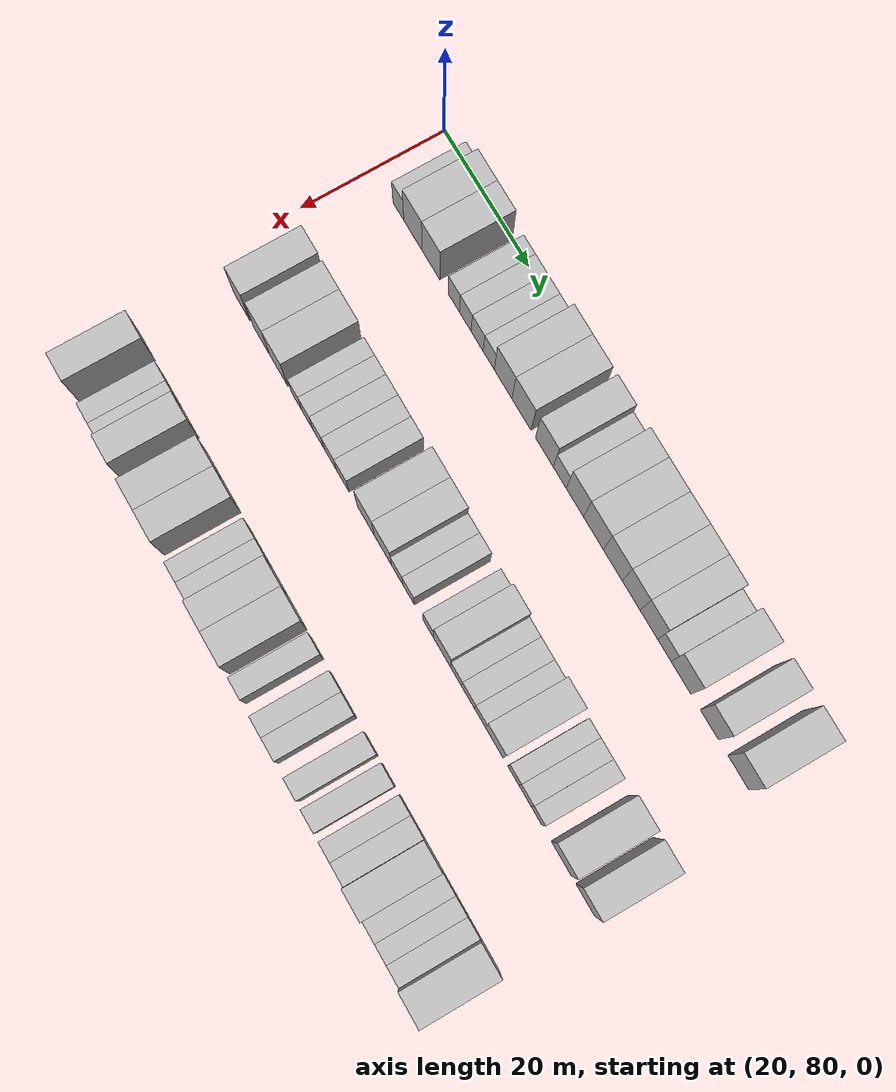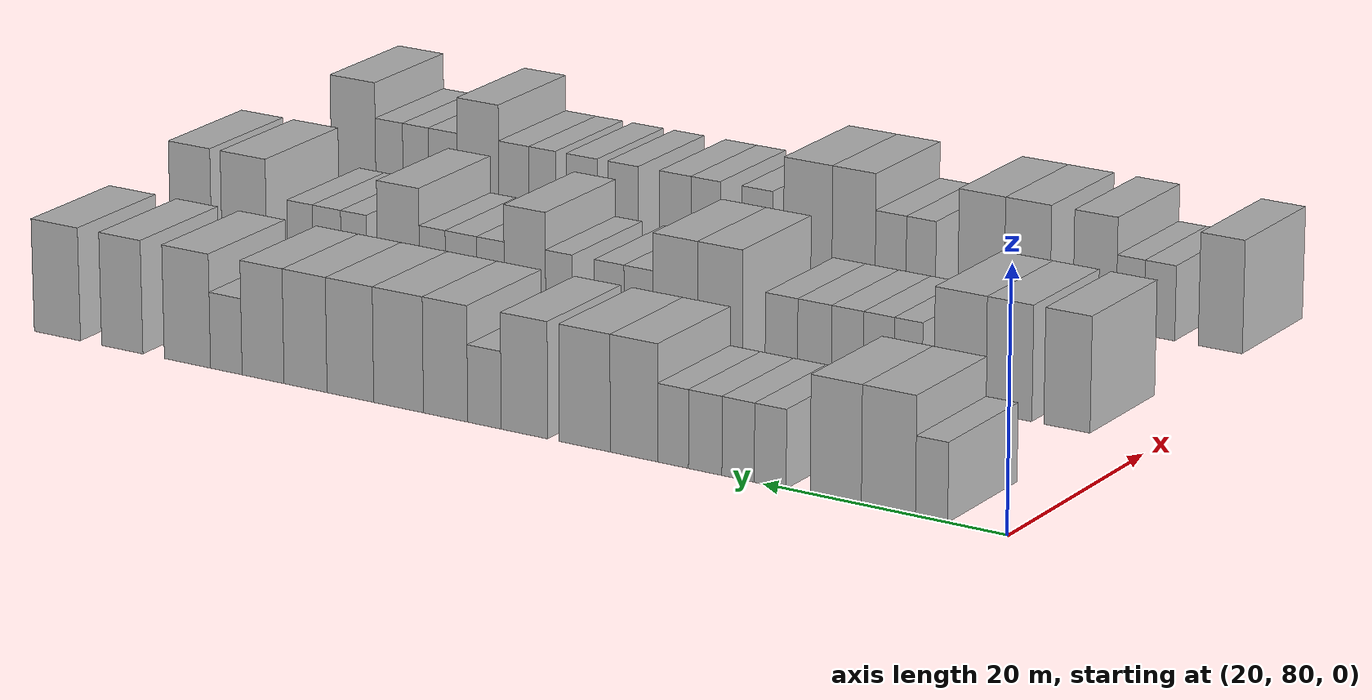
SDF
<sdf version="1.6">
 <world name="default">
  <model name="building_87">
   <static>1</static>
   <pose>25.0000 86.1654 0 0.000000 0.000000 0.000000</pose>
   <link name="link">
    <pose>0 0 3.00 0 0 0</pose>
    <collision name="collision"><geometry><box><size>10.0000 2.6192 6.0000</size></box></geometry></collision>
    <visual name="visual">
     <cast_shadows>0</cast_shadows>
     <geometry><box><size>10.0000 2.6192 6.0000</size></box></geometry>
     <material>
      <script>
       <uri>model://HANNAS_wall/materials/scripts</uri>
       <uri>model://HANNAS_wall/materials/textures</uri>
       <name>vrc/HANNAS_wall</name>
      </script>
     </material>
    </visual>
   </link>
  </model>
  <model name="building_88">
   <static>1</static>
   <pose>25.0000 89.6843 0 0.000000 0.000000 0.000000</pose>
   <link name="link">
    <pose>0 0 4.50 0 0 0</pose>
    <collision name="collision"><geometry><box><size>10.0000 4.4186 9.0000</size></box></geometry></collision>
    <visual name="visual">
     <cast_shadows>0</cast_shadows>
     <geometry><box><size>10.0000 4.4186 9.0000</size></box></geometry>
     <material>
      <script>
       <uri>model://HANNAS_wall/materials/scripts</uri>
       <uri>model://HANNAS_wall/materials/textures</uri>
       <name>vrc/HANNAS_wall</name>
      </script>
     </material>
    </visual>
   </link>
  </model>
  <model name="building_89">
   <static>1</static>
   <pose>25.0000 94.0015 0 0.000000 0.000000 0.000000</pose>
   <link name="link">
    <pose>0 0 4.50 0 0 0</pose>
    <collision name="collision"><geometry><box><size>10.0000 4.2158 9.0000</size></box></geometry></collision>
    <visual name="visual">
     <cast_shadows>0</cast_shadows>
     <geometry><box><size>10.0000 4.2158 9.0000</size></box></geometry>
     <material>
      <script>
       <uri>model://HANNAS_wall/materials/scripts</uri>
       <uri>model://HANNAS_wall/materials/textures</uri>
       <name>vrc/HANNAS_wall</name>
      </script>
     </material>
    </visual>
   </link>
  </model>
  <model name="building_90">
   <static>1</static>
   <pose>25.0000 99.4380 0 0.000000 0.000000 0.000000</pose>
   <link name="link">
    <pose>0 0 3.00 0 0 0</pose>
    <collision name="collision"><geometry><box><size>10.0000 2.6572 6.0000</size></box></geometry></collision>
    <visual name="visual">
     <cast_shadows>0</cast_shadows>
     <geometry><box><size>10.0000 2.6572 6.0000</size></box></geometry>
     <material>
      <script>
       <uri>model://HANNAS_wall/materials/scripts</uri>
       <uri>model://HANNAS_wall/materials/textures</uri>
       <name>vrc/HANNAS_wall</name>
      </script>
     </material>
    </visual>
   </link>
  </model>
  <model name="building_91">
   <static>1</static>
   <pose>25.0000 102.1294 0 0.000000 0.000000 0.000000</pose>
   <link name="link">
    <pose>0 0 3.00 0 0 0</pose>
    <collision name="collision"><geometry><box><size>10.0000 2.7257 6.0000</size></box></geometry></collision>
    <visual name="visual">
     <cast_shadows>0</cast_shadows>
     <geometry><box><size>10.0000 2.7257 6.0000</size></box></geometry>
     <material>
      <script>
       <uri>model://HANNAS_wall/materials/scripts</uri>
       <uri>model://HANNAS_wall/materials/textures</uri>
       <name>vrc/HANNAS_wall</name>
      </script>
     </material>
    </visual>
   </link>
  </model>
  <model name="building_92">
   <static>1</static>
   <pose>25.0000 104.9050 0 0.000000 0.000000 0.000000</pose>
   <link name="link">
    <pose>0 0 3.00 0 0 0</pose>
    <collision name="collision"><geometry><box><size>10.0000 2.8254 6.0000</size></box></geometry></collision>
    <visual name="visual">
     <cast_shadows>0</cast_shadows>
     <geometry><box><size>10.0000 2.8254 6.0000</size></box></geometry>
     <material>
      <script>
       <uri>model://HANNAS_wall/materials/scripts</uri>
       <uri>model://HANNAS_wall/materials/textures</uri>
       <name>vrc/HANNAS_wall</name>
      </script>
     </material>
    </visual>
   </link>
  </model>
  <model name="building_93">
   <static>1</static>
   <pose>25.0000 107.6232 0 0.000000 0.000000 0.000000</pose>
   <link name="link">
    <pose>0 0 3.00 0 0 0</pose>
    <collision name="collision"><geometry><box><size>10.0000 2.6109 6.0000</size></box></geometry></collision>
    <visual name="visual">
     <cast_shadows>0</cast_shadows>
     <geometry><box><size>10.0000 2.6109 6.0000</size></box></geometry>
     <material>
      <script>
       <uri>model://HANNAS_wall/materials/scripts</uri>
       <uri>model://HANNAS_wall/materials/textures</uri>
       <name>vrc/HANNAS_wall</name>
      </script>
     </material>
    </visual>
   </link>
  </model>
  <model name="building_94">
   <static>1</static>
   <pose>25.0000 110.9564 0 0.000000 0.000000 0.000000</pose>
   <link name="link">
    <pose>0 0 4.50 0 0 0</pose>
    <collision name="collision"><geometry><box><size>10.0000 4.0555 9.0000</size></box></geometry></collision>
    <visual name="visual">
     <cast_shadows>0</cast_shadows>
     <geometry><box><size>10.0000 4.0555 9.0000</size></box></geometry>
     <material>
      <script>
       <uri>model://HANNAS_wall/materials/scripts</uri>
       <uri>model://HANNAS_wall/materials/textures</uri>
       <name>vrc/HANNAS_wall</name>
      </script>
     </material>
    </visual>
   </link>
  </model>
  <model name="building_95">
   <static>1</static>
   <pose>25.0000 115.1822 0 0.000000 0.000000 0.000000</pose>
   <link name="link">
    <pose>0 0 4.50 0 0 0</pose>
    <collision name="collision"><geometry><box><size>10.0000 4.3962 9.0000</size></box></geometry></collision>
    <visual name="visual">
     <cast_shadows>0</cast_shadows>
     <geometry><box><size>10.0000 4.3962 9.0000</size></box></geometry>
     <material>
      <script>
       <uri>model://HANNAS_wall/materials/scripts</uri>
       <uri>model://HANNAS_wall/materials/textures</uri>
       <name>vrc/HANNAS_wall</name>
      </script>
     </material>
    </visual>
   </link>
  </model>
  <model name="building_96">
   <static>1</static>
   <pose>25.0000 120.4069 0 0.000000 0.000000 0.000000</pose>
   <link name="link">
    <pose>0 0 4.50 0 0 0</pose>
    <collision name="collision"><geometry><box><size>10.0000 4.0532 9.0000</size></box></geometry></collision>
    <visual name="visual">
     <cast_shadows>0</cast_shadows>
     <geometry><box><size>10.0000 4.0532 9.0000</size></box></geometry>
     <material>
      <script>
       <uri>model://HANNAS_wall/materials/scripts</uri>
       <uri>model://HANNAS_wall/materials/textures</uri>
       <name>vrc/HANNAS_wall</name>
      </script>
     </material>
    </visual>
   </link>
  </model>
  <model name="building_97">
   <static>1</static>
   <pose>25.0000 123.9028 0 0.000000 0.000000 0.000000</pose>
   <link name="link">
    <pose>0 0 3.00 0 0 0</pose>
    <collision name="collision"><geometry><box><size>10.0000 2.9387 6.0000</size></box></geometry></collision>
    <visual name="visual">
     <cast_shadows>0</cast_shadows>
     <geometry><box><size>10.0000 2.9387 6.0000</size></box></geometry>
     <material>
      <script>
       <uri>model://HANNAS_wall/materials/scripts</uri>
       <uri>model://HANNAS_wall/materials/textures</uri>
       <name>vrc/HANNAS_wall</name>
      </script>
     </material>
    </visual>
   </link>
  </model>
  <model name="building_98">
   <static>1</static>
   <pose>25.0000 127.3267 0 0.000000 0.000000 0.000000</pose>
   <link name="link">
    <pose>0 0 4.50 0 0 0</pose>
    <collision name="collision"><geometry><box><size>10.0000 3.9090 9.0000</size></box></geometry></collision>
    <visual name="visual">
     <cast_shadows>0</cast_shadows>
     <geometry><box><size>10.0000 3.9090 9.0000</size></box></geometry>
     <material>
      <script>
       <uri>model://HANNAS_wall/materials/scripts</uri>
       <uri>model://HANNAS_wall/materials/textures</uri>
       <name>vrc/HANNAS_wall</name>
      </script>
     </material>
    </visual>
   </link>
  </model>
  <model name="building_99">
   <static>1</static>
   <pose>25.0000 131.4982 0 0.000000 0.000000 0.000000</pose>
   <link name="link">
    <pose>0 0 4.50 0 0 0</pose>
    <collision name="collision"><geometry><box><size>10.0000 4.4340 9.0000</size></box></geometry></collision>
    <visual name="visual">
     <cast_shadows>0</cast_shadows>
     <geometry><box><size>10.0000 4.4340 9.0000</size></box></geometry>
     <material>
      <script>
       <uri>model://HANNAS_wall/materials/scripts</uri>
       <uri>model://HANNAS_wall/materials/textures</uri>
       <name>vrc/HANNAS_wall</name>
      </script>
     </material>
    </visual>
   </link>
  </model>
  <model name="building_100">
   <static>1</static>
   <pose>25.0000 135.8136 0 0.000000 0.000000 0.000000</pose>
   <link name="link">
    <pose>0 0 4.50 0 0 0</pose>
    <collision name="collision"><geometry><box><size>10.0000 4.1969 9.0000</size></box></geometry></collision>
    <visual name="visual">
     <cast_shadows>0</cast_shadows>
     <geometry><box><size>10.0000 4.1969 9.0000</size></box></geometry>
     <material>
      <script>
       <uri>model://HANNAS_wall/materials/scripts</uri>
       <uri>model://HANNAS_wall/materials/textures</uri>
       <name>vrc/HANNAS_wall</name>
      </script>
     </material>
    </visual>
   </link>
  </model>
  <model name="building_101">
   <static>1</static>
   <pose>25.0000 139.8606 0 0.000000 0.000000 0.000000</pose>
   <link name="link">
    <pose>0 0 4.50 0 0 0</pose>
    <collision name="collision"><geometry><box><size>10.0000 3.8971 9.0000</size></box></geometry></collision>
    <visual name="visual">
     <cast_shadows>0</cast_shadows>
     <geometry><box><size>10.0000 3.8971 9.0000</size></box></geometry>
     <material>
      <script>
       <uri>model://HANNAS_wall/materials/scripts</uri>
       <uri>model://HANNAS_wall/materials/textures</uri>
       <name>vrc/HANNAS_wall</name>
      </script>
     </material>
    </visual>
   </link>
  </model>
  <model name="building_102">
   <static>1</static>
   <pose>25.0000 143.7255 0 0.000000 0.000000 0.000000</pose>
   <link name="link">
    <pose>0 0 4.50 0 0 0</pose>
    <collision name="collision"><geometry><box><size>10.0000 3.8327 9.0000</size></box></geometry></collision>
    <visual name="visual">
     <cast_shadows>0</cast_shadows>
     <geometry><box><size>10.0000 3.8327 9.0000</size></box></geometry>
     <material>
      <script>
       <uri>model://HANNAS_wall/materials/scripts</uri>
       <uri>model://HANNAS_wall/materials/textures</uri>
       <name>vrc/HANNAS_wall</name>
      </script>
     </material>
    </visual>
   </link>
  </model>
  <model name="building_103">
   <static>1</static>
   <pose>25.0000 147.0928 0 0.000000 0.000000 0.000000</pose>
   <link name="link">
    <pose>0 0 3.00 0 0 0</pose>
    <collision name="collision"><geometry><box><size>10.0000 2.9020 6.0000</size></box></geometry></collision>
    <visual name="visual">
     <cast_shadows>0</cast_shadows>
     <geometry><box><size>10.0000 2.9020 6.0000</size></box></geometry>
     <material>
      <script>
       <uri>model://HANNAS_wall/materials/scripts</uri>
       <uri>model://HANNAS_wall/materials/textures</uri>
       <name>vrc/HANNAS_wall</name>
      </script>
     </material>
    </visual>
   </link>
  </model>
  <model name="building_104">
   <static>1</static>
   <pose>25.0000 150.6848 0 0.000000 0.000000 0.000000</pose>
   <link name="link">
    <pose>0 0 4.50 0 0 0</pose>
    <collision name="collision"><geometry><box><size>10.0000 4.2819 9.0000</size></box></geometry></collision>
    <visual name="visual">
     <cast_shadows>0</cast_shadows>
     <geometry><box><size>10.0000 4.2819 9.0000</size></box></geometry>
     <material>
      <script>
       <uri>model://HANNAS_wall/materials/scripts</uri>
       <uri>model://HANNAS_wall/materials/textures</uri>
       <name>vrc/HANNAS_wall</name>
      </script>
     </material>
    </visual>
   </link>
  </model>
  <model name="building_105">
   <static>1</static>
   <pose>25.0000 156.7584 0 0.000000 0.000000 0.000000</pose>
   <link name="link">
    <pose>0 0 4.50 0 0 0</pose>
    <collision name="collision"><geometry><box><size>10.0000 3.8654 9.0000</size></box></geometry></collision>
    <visual name="visual">
     <cast_shadows>0</cast_shadows>
     <geometry><box><size>10.0000 3.8654 9.0000</size></box></geometry>
     <material>
      <script>
       <uri>model://HANNAS_wall/materials/scripts</uri>
       <uri>model://HANNAS_wall/materials/textures</uri>
       <name>vrc/HANNAS_wall</name>
      </script>
     </material>
    </visual>
   </link>
  </model>
  <model name="building_106">
   <static>1</static>
   <pose>25.0000 162.8787 0 0.000000 0.000000 0.000000</pose>
   <link name="link">
    <pose>0 0 4.50 0 0 0</pose>
    <collision name="collision"><geometry><box><size>10.0000 4.3751 9.0000</size></box></geometry></collision>
    <visual name="visual">
     <cast_shadows>0</cast_shadows>
     <geometry><box><size>10.0000 4.3751 9.0000</size></box></geometry>
     <material>
      <script>
       <uri>model://HANNAS_wall/materials/scripts</uri>
       <uri>model://HANNAS_wall/materials/textures</uri>
       <name>vrc/HANNAS_wall</name>
      </script>
     </material>
    </visual>
   </link>
  </model>
  <model name="building_213">
   <static>1</static>
   <pose>47.0000 87.3806 0 0.000000 0.000000 0.000000</pose>
   <link name="link">
    <pose>0 0 4.50 0 0 0</pose>
    <collision name="collision"><geometry><box><size>10.0000 3.8531 9.0000</size></box></geometry></collision>
    <visual name="visual">
     <cast_shadows>0</cast_shadows>
     <geometry><box><size>10.0000 3.8531 9.0000</size></box></geometry>
     <material>
      <script>
       <uri>model://HANNAS_wall/materials/scripts</uri>
       <uri>model://HANNAS_wall/materials/textures</uri>
       <name>vrc/HANNAS_wall</name>
      </script>
     </material>
    </visual>
   </link>
  </model>
  <model name="building_214">
   <static>1</static>
   <pose>47.0000 92.2495 0 0.000000 0.000000 0.000000</pose>
   <link name="link">
    <pose>0 0 4.50 0 0 0</pose>
    <collision name="collision"><geometry><box><size>10.0000 3.8846 9.0000</size></box></geometry></collision>
    <visual name="visual">
     <cast_shadows>0</cast_shadows>
     <geometry><box><size>10.0000 3.8846 9.0000</size></box></geometry>
     <material>
      <script>
       <uri>model://HANNAS_wall/materials/scripts</uri>
       <uri>model://HANNAS_wall/materials/textures</uri>
       <name>vrc/HANNAS_wall</name>
      </script>
     </material>
    </visual>
   </link>
  </model>
  <model name="building_215">
   <static>1</static>
   <pose>47.0000 96.3915 0 0.000000 0.000000 0.000000</pose>
   <link name="link">
    <pose>0 0 4.50 0 0 0</pose>
    <collision name="collision"><geometry><box><size>10.0000 4.3994 9.0000</size></box></geometry></collision>
    <visual name="visual">
     <cast_shadows>0</cast_shadows>
     <geometry><box><size>10.0000 4.3994 9.0000</size></box></geometry>
     <material>
      <script>
       <uri>model://HANNAS_wall/materials/scripts</uri>
       <uri>model://HANNAS_wall/materials/textures</uri>
       <name>vrc/HANNAS_wall</name>
      </script>
     </material>
    </visual>
   </link>
  </model>
  <model name="building_216">
   <static>1</static>
   <pose>47.0000 100.8091 0 0.000000 0.000000 0.000000</pose>
   <link name="link">
    <pose>0 0 3.00 0 0 0</pose>
    <collision name="collision"><geometry><box><size>10.0000 2.4359 6.0000</size></box></geometry></collision>
    <visual name="visual">
     <cast_shadows>0</cast_shadows>
     <geometry><box><size>10.0000 2.4359 6.0000</size></box></geometry>
     <material>
      <script>
       <uri>model://HANNAS_wall/materials/scripts</uri>
       <uri>model://HANNAS_wall/materials/textures</uri>
       <name>vrc/HANNAS_wall</name>
      </script>
     </material>
    </visual>
   </link>
  </model>
  <model name="building_217">
   <static>1</static>
   <pose>47.0000 103.3325 0 0.000000 0.000000 0.000000</pose>
   <link name="link">
    <pose>0 0 3.00 0 0 0</pose>
    <collision name="collision"><geometry><box><size>10.0000 2.6111 6.0000</size></box></geometry></collision>
    <visual name="visual">
     <cast_shadows>0</cast_shadows>
     <geometry><box><size>10.0000 2.6111 6.0000</size></box></geometry>
     <material>
      <script>
       <uri>model://HANNAS_wall/materials/scripts</uri>
       <uri>model://HANNAS_wall/materials/textures</uri>
       <name>vrc/HANNAS_wall</name>
      </script>
     </material>
    </visual>
   </link>
  </model>
  <model name="building_218">
   <static>1</static>
   <pose>47.0000 106.0269 0 0.000000 0.000000 0.000000</pose>
   <link name="link">
    <pose>0 0 3.00 0 0 0</pose>
    <collision name="collision"><geometry><box><size>10.0000 2.7776 6.0000</size></box></geometry></collision>
    <visual name="visual">
     <cast_shadows>0</cast_shadows>
     <geometry><box><size>10.0000 2.7776 6.0000</size></box></geometry>
     <material>
      <script>
       <uri>model://HANNAS_wall/materials/scripts</uri>
       <uri>model://HANNAS_wall/materials/textures</uri>
       <name>vrc/HANNAS_wall</name>
      </script>
     </material>
    </visual>
   </link>
  </model>
  <model name="building_219">
   <static>1</static>
   <pose>47.0000 108.8839 0 0.000000 0.000000 0.000000</pose>
   <link name="link">
    <pose>0 0 3.00 0 0 0</pose>
    <collision name="collision"><geometry><box><size>10.0000 2.9365 6.0000</size></box></geometry></collision>
    <visual name="visual">
     <cast_shadows>0</cast_shadows>
     <geometry><box><size>10.0000 2.9365 6.0000</size></box></geometry>
     <material>
      <script>
       <uri>model://HANNAS_wall/materials/scripts</uri>
       <uri>model://HANNAS_wall/materials/textures</uri>
       <name>vrc/HANNAS_wall</name>
      </script>
     </material>
    </visual>
   </link>
  </model>
  <model name="building_220">
   <static>1</static>
   <pose>47.0000 111.7699 0 0.000000 0.000000 0.000000</pose>
   <link name="link">
    <pose>0 0 3.00 0 0 0</pose>
    <collision name="collision"><geometry><box><size>10.0000 2.8353 6.0000</size></box></geometry></collision>
    <visual name="visual">
     <cast_shadows>0</cast_shadows>
     <geometry><box><size>10.0000 2.8353 6.0000</size></box></geometry>
     <material>
      <script>
       <uri>model://HANNAS_wall/materials/scripts</uri>
       <uri>model://HANNAS_wall/materials/textures</uri>
       <name>vrc/HANNAS_wall</name>
      </script>
     </material>
    </visual>
   </link>
  </model>
  <model name="building_221">
   <static>1</static>
   <pose>47.0000 117.1782 0 0.000000 0.000000 0.000000</pose>
   <link name="link">
    <pose>0 0 4.50 0 0 0</pose>
    <collision name="collision"><geometry><box><size>10.0000 3.9814 9.0000</size></box></geometry></collision>
    <visual name="visual">
     <cast_shadows>0</cast_shadows>
     <geometry><box><size>10.0000 3.9814 9.0000</size></box></geometry>
     <material>
      <script>
       <uri>model://HANNAS_wall/materials/scripts</uri>
       <uri>model://HANNAS_wall/materials/textures</uri>
       <name>vrc/HANNAS_wall</name>
      </script>
     </material>
    </visual>
   </link>
  </model>
  <model name="building_222">
   <static>1</static>
   <pose>47.0000 121.1593 0 0.000000 0.000000 0.000000</pose>
   <link name="link">
    <pose>0 0 4.50 0 0 0</pose>
    <collision name="collision"><geometry><box><size>10.0000 3.9808 9.0000</size></box></geometry></collision>
    <visual name="visual">
     <cast_shadows>0</cast_shadows>
     <geometry><box><size>10.0000 3.9808 9.0000</size></box></geometry>
     <material>
      <script>
       <uri>model://HANNAS_wall/materials/scripts</uri>
       <uri>model://HANNAS_wall/materials/textures</uri>
       <name>vrc/HANNAS_wall</name>
      </script>
     </material>
    </visual>
   </link>
  </model>
  <model name="building_223">
   <static>1</static>
   <pose>47.0000 124.4349 0 0.000000 0.000000 0.000000</pose>
   <link name="link">
    <pose>0 0 3.00 0 0 0</pose>
    <collision name="collision"><geometry><box><size>10.0000 2.5704 6.0000</size></box></geometry></collision>
    <visual name="visual">
     <cast_shadows>0</cast_shadows>
     <geometry><box><size>10.0000 2.5704 6.0000</size></box></geometry>
     <material>
      <script>
       <uri>model://HANNAS_wall/materials/scripts</uri>
       <uri>model://HANNAS_wall/materials/textures</uri>
       <name>vrc/HANNAS_wall</name>
      </script>
     </material>
    </visual>
   </link>
  </model>
  <model name="building_224">
   <static>1</static>
   <pose>47.0000 127.0532 0 0.000000 0.000000 0.000000</pose>
   <link name="link">
    <pose>0 0 3.00 0 0 0</pose>
    <collision name="collision"><geometry><box><size>10.0000 2.6662 6.0000</size></box></geometry></collision>
    <visual name="visual">
     <cast_shadows>0</cast_shadows>
     <geometry><box><size>10.0000 2.6662 6.0000</size></box></geometry>
     <material>
      <script>
       <uri>model://HANNAS_wall/materials/scripts</uri>
       <uri>model://HANNAS_wall/materials/textures</uri>
       <name>vrc/HANNAS_wall</name>
      </script>
     </material>
    </visual>
   </link>
  </model>
  <model name="building_225">
   <static>1</static>
   <pose>47.0000 131.5992 0 0.000000 0.000000 0.000000</pose>
   <link name="link">
    <pose>0 0 3.00 0 0 0</pose>
    <collision name="collision"><geometry><box><size>10.0000 2.4259 6.0000</size></box></geometry></collision>
    <visual name="visual">
     <cast_shadows>0</cast_shadows>
     <geometry><box><size>10.0000 2.4259 6.0000</size></box></geometry>
     <material>
      <script>
       <uri>model://HANNAS_wall/materials/scripts</uri>
       <uri>model://HANNAS_wall/materials/textures</uri>
       <name>vrc/HANNAS_wall</name>
      </script>
     </material>
    </visual>
   </link>
  </model>
  <model name="building_226">
   <static>1</static>
   <pose>47.0000 134.7042 0 0.000000 0.000000 0.000000</pose>
   <link name="link">
    <pose>0 0 4.50 0 0 0</pose>
    <collision name="collision"><geometry><box><size>10.0000 3.7841 9.0000</size></box></geometry></collision>
    <visual name="visual">
     <cast_shadows>0</cast_shadows>
     <geometry><box><size>10.0000 3.7841 9.0000</size></box></geometry>
     <material>
      <script>
       <uri>model://HANNAS_wall/materials/scripts</uri>
       <uri>model://HANNAS_wall/materials/textures</uri>
       <name>vrc/HANNAS_wall</name>
      </script>
     </material>
    </visual>
   </link>
  </model>
  <model name="building_227">
   <static>1</static>
   <pose>47.0000 137.8535 0 0.000000 0.000000 0.000000</pose>
   <link name="link">
    <pose>0 0 3.00 0 0 0</pose>
    <collision name="collision"><geometry><box><size>10.0000 2.5145 6.0000</size></box></geometry></collision>
    <visual name="visual">
     <cast_shadows>0</cast_shadows>
     <geometry><box><size>10.0000 2.5145 6.0000</size></box></geometry>
     <material>
      <script>
       <uri>model://HANNAS_wall/materials/scripts</uri>
       <uri>model://HANNAS_wall/materials/textures</uri>
       <name>vrc/HANNAS_wall</name>
      </script>
     </material>
    </visual>
   </link>
  </model>
  <model name="building_228">
   <static>1</static>
   <pose>47.0000 140.5636 0 0.000000 0.000000 0.000000</pose>
   <link name="link">
    <pose>0 0 3.00 0 0 0</pose>
    <collision name="collision"><geometry><box><size>10.0000 2.9057 6.0000</size></box></geometry></collision>
    <visual name="visual">
     <cast_shadows>0</cast_shadows>
     <geometry><box><size>10.0000 2.9057 6.0000</size></box></geometry>
     <material>
      <script>
       <uri>model://HANNAS_wall/materials/scripts</uri>
       <uri>model://HANNAS_wall/materials/textures</uri>
       <name>vrc/HANNAS_wall</name>
      </script>
     </material>
    </visual>
   </link>
  </model>
  <model name="building_229">
   <static>1</static>
   <pose>47.0000 143.2260 0 0.000000 0.000000 0.000000</pose>
   <link name="link">
    <pose>0 0 3.00 0 0 0</pose>
    <collision name="collision"><geometry><box><size>10.0000 2.4192 6.0000</size></box></geometry></collision>
    <visual name="visual">
     <cast_shadows>0</cast_shadows>
     <geometry><box><size>10.0000 2.4192 6.0000</size></box></geometry>
     <material>
      <script>
       <uri>model://HANNAS_wall/materials/scripts</uri>
       <uri>model://HANNAS_wall/materials/textures</uri>
       <name>vrc/HANNAS_wall</name>
      </script>
     </material>
    </visual>
   </link>
  </model>
  <model name="building_230">
   <static>1</static>
   <pose>47.0000 146.3981 0 0.000000 0.000000 0.000000</pose>
   <link name="link">
    <pose>0 0 4.50 0 0 0</pose>
    <collision name="collision"><geometry><box><size>10.0000 3.9250 9.0000</size></box></geometry></collision>
    <visual name="visual">
     <cast_shadows>0</cast_shadows>
     <geometry><box><size>10.0000 3.9250 9.0000</size></box></geometry>
     <material>
      <script>
       <uri>model://HANNAS_wall/materials/scripts</uri>
       <uri>model://HANNAS_wall/materials/textures</uri>
       <name>vrc/HANNAS_wall</name>
      </script>
     </material>
    </visual>
   </link>
  </model>
  <model name="building_231">
   <static>1</static>
   <pose>47.0000 150.5735 0 0.000000 0.000000 0.000000</pose>
   <link name="link">
    <pose>0 0 3.00 0 0 0</pose>
    <collision name="collision"><geometry><box><size>10.0000 2.4258 6.0000</size></box></geometry></collision>
    <visual name="visual">
     <cast_shadows>0</cast_shadows>
     <geometry><box><size>10.0000 2.4258 6.0000</size></box></geometry>
     <material>
      <script>
       <uri>model://HANNAS_wall/materials/scripts</uri>
       <uri>model://HANNAS_wall/materials/textures</uri>
       <name>vrc/HANNAS_wall</name>
      </script>
     </material>
    </visual>
   </link>
  </model>
  <model name="building_232">
   <static>1</static>
   <pose>47.0000 153.1249 0 0.000000 0.000000 0.000000</pose>
   <link name="link">
    <pose>0 0 3.00 0 0 0</pose>
    <collision name="collision"><geometry><box><size>10.0000 2.6769 6.0000</size></box></geometry></collision>
    <visual name="visual">
     <cast_shadows>0</cast_shadows>
     <geometry><box><size>10.0000 2.6769 6.0000</size></box></geometry>
     <material>
      <script>
       <uri>model://HANNAS_wall/materials/scripts</uri>
       <uri>model://HANNAS_wall/materials/textures</uri>
       <name>vrc/HANNAS_wall</name>
      </script>
     </material>
    </visual>
   </link>
  </model>
  <model name="building_233">
   <static>1</static>
   <pose>47.0000 155.6714 0 0.000000 0.000000 0.000000</pose>
   <link name="link">
    <pose>0 0 3.00 0 0 0</pose>
    <collision name="collision"><geometry><box><size>10.0000 2.4159 6.0000</size></box></geometry></collision>
    <visual name="visual">
     <cast_shadows>0</cast_shadows>
     <geometry><box><size>10.0000 2.4159 6.0000</size></box></geometry>
     <material>
      <script>
       <uri>model://HANNAS_wall/materials/scripts</uri>
       <uri>model://HANNAS_wall/materials/textures</uri>
       <name>vrc/HANNAS_wall</name>
      </script>
     </material>
    </visual>
   </link>
  </model>
  <model name="building_234">
   <static>1</static>
   <pose>47.0000 161.0361 0 0.000000 0.000000 0.000000</pose>
   <link name="link">
    <pose>0 0 4.50 0 0 0</pose>
    <collision name="collision"><geometry><box><size>10.0000 4.3135 9.0000</size></box></geometry></collision>
    <visual name="visual">
     <cast_shadows>0</cast_shadows>
     <geometry><box><size>10.0000 4.3135 9.0000</size></box></geometry>
     <material>
      <script>
       <uri>model://HANNAS_wall/materials/scripts</uri>
       <uri>model://HANNAS_wall/materials/textures</uri>
       <name>vrc/HANNAS_wall</name>
      </script>
     </material>
    </visual>
   </link>
  </model>
  <model name="building_235">
   <static>1</static>
   <pose>47.0000 166.1952 0 0.000000 0.000000 0.000000</pose>
   <link name="link">
    <pose>0 0 4.50 0 0 0</pose>
    <collision name="collision"><geometry><box><size>10.0000 4.0047 9.0000</size></box></geometry></collision>
    <visual name="visual">
     <cast_shadows>0</cast_shadows>
     <geometry><box><size>10.0000 4.0047 9.0000</size></box></geometry>
     <material>
      <script>
       <uri>model://HANNAS_wall/materials/scripts</uri>
       <uri>model://HANNAS_wall/materials/textures</uri>
       <name>vrc/HANNAS_wall</name>
      </script>
     </material>
    </visual>
   </link>
  </model>
  <model name="building_345">
   <static>1</static>
   <pose>69.0000 86.2341 0 0.000000 0.000000 0.000000</pose>
   <link name="link">
    <pose>0 0 4.50 0 0 0</pose>
    <collision name="collision"><geometry><box><size>10.0000 3.7595 9.0000</size></box></geometry></collision>
    <visual name="visual">
     <cast_shadows>0</cast_shadows>
     <geometry><box><size>10.0000 3.7595 9.0000</size></box></geometry>
     <material>
      <script>
       <uri>model://HANNAS_wall/materials/scripts</uri>
       <uri>model://HANNAS_wall/materials/textures</uri>
       <name>vrc/HANNAS_wall</name>
      </script>
     </material>
    </visual>
   </link>
  </model>
  <model name="building_346">
   <static>1</static>
   <pose>69.0000 91.4496 0 0.000000 0.000000 0.000000</pose>
   <link name="link">
    <pose>0 0 3.00 0 0 0</pose>
    <collision name="collision"><geometry><box><size>10.0000 2.6716 6.0000</size></box></geometry></collision>
    <visual name="visual">
     <cast_shadows>0</cast_shadows>
     <geometry><box><size>10.0000 2.6716 6.0000</size></box></geometry>
     <material>
      <script>
       <uri>model://HANNAS_wall/materials/scripts</uri>
       <uri>model://HANNAS_wall/materials/textures</uri>
       <name>vrc/HANNAS_wall</name>
      </script>
     </material>
    </visual>
   </link>
  </model>
  <model name="building_347">
   <static>1</static>
   <pose>69.0000 93.9893 0 0.000000 0.000000 0.000000</pose>
   <link name="link">
    <pose>0 0 3.00 0 0 0</pose>
    <collision name="collision"><geometry><box><size>10.0000 2.4077 6.0000</size></box></geometry></collision>
    <visual name="visual">
     <cast_shadows>0</cast_shadows>
     <geometry><box><size>10.0000 2.4077 6.0000</size></box></geometry>
     <material>
      <script>
       <uri>model://HANNAS_wall/materials/scripts</uri>
       <uri>model://HANNAS_wall/materials/textures</uri>
       <name>vrc/HANNAS_wall</name>
      </script>
     </material>
    </visual>
   </link>
  </model>
  <model name="building_348">
   <static>1</static>
   <pose>69.0000 97.0666 0 0.000000 0.000000 0.000000</pose>
   <link name="link">
    <pose>0 0 4.50 0 0 0</pose>
    <collision name="collision"><geometry><box><size>10.0000 3.7468 9.0000</size></box></geometry></collision>
    <visual name="visual">
     <cast_shadows>0</cast_shadows>
     <geometry><box><size>10.0000 3.7468 9.0000</size></box></geometry>
     <material>
      <script>
       <uri>model://HANNAS_wall/materials/scripts</uri>
       <uri>model://HANNAS_wall/materials/textures</uri>
       <name>vrc/HANNAS_wall</name>
      </script>
     </material>
    </visual>
   </link>
  </model>
  <model name="building_349">
   <static>1</static>
   <pose>69.0000 102.9560 0 0.000000 0.000000 0.000000</pose>
   <link name="link">
    <pose>0 0 4.50 0 0 0</pose>
    <collision name="collision"><geometry><box><size>10.0000 4.0320 9.0000</size></box></geometry></collision>
    <visual name="visual">
     <cast_shadows>0</cast_shadows>
     <geometry><box><size>10.0000 4.0320 9.0000</size></box></geometry>
     <material>
      <script>
       <uri>model://HANNAS_wall/materials/scripts</uri>
       <uri>model://HANNAS_wall/materials/textures</uri>
       <name>vrc/HANNAS_wall</name>
      </script>
     </material>
    </visual>
   </link>
  </model>
  <model name="building_350">
   <static>1</static>
   <pose>69.0000 107.0184 0 0.000000 0.000000 0.000000</pose>
   <link name="link">
    <pose>0 0 4.50 0 0 0</pose>
    <collision name="collision"><geometry><box><size>10.0000 4.0928 9.0000</size></box></geometry></collision>
    <visual name="visual">
     <cast_shadows>0</cast_shadows>
     <geometry><box><size>10.0000 4.0928 9.0000</size></box></geometry>
     <material>
      <script>
       <uri>model://HANNAS_wall/materials/scripts</uri>
       <uri>model://HANNAS_wall/materials/textures</uri>
       <name>vrc/HANNAS_wall</name>
      </script>
     </material>
    </visual>
   </link>
  </model>
  <model name="building_351">
   <static>1</static>
   <pose>69.0000 112.3842 0 0.000000 0.000000 0.000000</pose>
   <link name="link">
    <pose>0 0 3.00 0 0 0</pose>
    <collision name="collision"><geometry><box><size>10.0000 2.6387 6.0000</size></box></geometry></collision>
    <visual name="visual">
     <cast_shadows>0</cast_shadows>
     <geometry><box><size>10.0000 2.6387 6.0000</size></box></geometry>
     <material>
      <script>
       <uri>model://HANNAS_wall/materials/scripts</uri>
       <uri>model://HANNAS_wall/materials/textures</uri>
       <name>vrc/HANNAS_wall</name>
      </script>
     </material>
    </visual>
   </link>
  </model>
  <model name="building_352">
   <static>1</static>
   <pose>69.0000 115.0921 0 0.000000 0.000000 0.000000</pose>
   <link name="link">
    <pose>0 0 3.00 0 0 0</pose>
    <collision name="collision"><geometry><box><size>10.0000 2.7771 6.0000</size></box></geometry></collision>
    <visual name="visual">
     <cast_shadows>0</cast_shadows>
     <geometry><box><size>10.0000 2.7771 6.0000</size></box></geometry>
     <material>
      <script>
       <uri>model://HANNAS_wall/materials/scripts</uri>
       <uri>model://HANNAS_wall/materials/textures</uri>
       <name>vrc/HANNAS_wall</name>
      </script>
     </material>
    </visual>
   </link>
  </model>
  <model name="building_353">
   <static>1</static>
   <pose>69.0000 118.4374 0 0.000000 0.000000 0.000000</pose>
   <link name="link">
    <pose>0 0 4.50 0 0 0</pose>
    <collision name="collision"><geometry><box><size>10.0000 3.9135 9.0000</size></box></geometry></collision>
    <visual name="visual">
     <cast_shadows>0</cast_shadows>
     <geometry><box><size>10.0000 3.9135 9.0000</size></box></geometry>
     <material>
      <script>
       <uri>model://HANNAS_wall/materials/scripts</uri>
       <uri>model://HANNAS_wall/materials/textures</uri>
       <name>vrc/HANNAS_wall</name>
      </script>
     </material>
    </visual>
   </link>
  </model>
  <model name="building_354">
   <static>1</static>
   <pose>69.0000 122.6010 0 0.000000 0.000000 0.000000</pose>
   <link name="link">
    <pose>0 0 4.50 0 0 0</pose>
    <collision name="collision"><geometry><box><size>10.0000 4.4137 9.0000</size></box></geometry></collision>
    <visual name="visual">
     <cast_shadows>0</cast_shadows>
     <geometry><box><size>10.0000 4.4137 9.0000</size></box></geometry>
     <material>
      <script>
       <uri>model://HANNAS_wall/materials/scripts</uri>
       <uri>model://HANNAS_wall/materials/textures</uri>
       <name>vrc/HANNAS_wall</name>
      </script>
     </material>
    </visual>
   </link>
  </model>
  <model name="building_355">
   <static>1</static>
   <pose>69.0000 127.2311 0 0.000000 0.000000 0.000000</pose>
   <link name="link">
    <pose>0 0 3.00 0 0 0</pose>
    <collision name="collision"><geometry><box><size>10.0000 2.8465 6.0000</size></box></geometry></collision>
    <visual name="visual">
     <cast_shadows>0</cast_shadows>
     <geometry><box><size>10.0000 2.8465 6.0000</size></box></geometry>
     <material>
      <script>
       <uri>model://HANNAS_wall/materials/scripts</uri>
       <uri>model://HANNAS_wall/materials/textures</uri>
       <name>vrc/HANNAS_wall</name>
      </script>
     </material>
    </visual>
   </link>
  </model>
  <model name="building_356">
   <static>1</static>
   <pose>69.0000 132.0069 0 0.000000 0.000000 0.000000</pose>
   <link name="link">
    <pose>0 0 3.00 0 0 0</pose>
    <collision name="collision"><geometry><box><size>10.0000 2.7051 6.0000</size></box></geometry></collision>
    <visual name="visual">
     <cast_shadows>0</cast_shadows>
     <geometry><box><size>10.0000 2.7051 6.0000</size></box></geometry>
     <material>
      <script>
       <uri>model://HANNAS_wall/materials/scripts</uri>
       <uri>model://HANNAS_wall/materials/textures</uri>
       <name>vrc/HANNAS_wall</name>
      </script>
     </material>
    </visual>
   </link>
  </model>
  <model name="building_357">
   <static>1</static>
   <pose>69.0000 134.8333 0 0.000000 0.000000 0.000000</pose>
   <link name="link">
    <pose>0 0 3.00 0 0 0</pose>
    <collision name="collision"><geometry><box><size>10.0000 2.9478 6.0000</size></box></geometry></collision>
    <visual name="visual">
     <cast_shadows>0</cast_shadows>
     <geometry><box><size>10.0000 2.9478 6.0000</size></box></geometry>
     <material>
      <script>
       <uri>model://HANNAS_wall/materials/scripts</uri>
       <uri>model://HANNAS_wall/materials/textures</uri>
       <name>vrc/HANNAS_wall</name>
      </script>
     </material>
    </visual>
   </link>
  </model>
  <model name="building_358">
   <static>1</static>
   <pose>69.0000 139.7425 0 0.000000 0.000000 0.000000</pose>
   <link name="link">
    <pose>0 0 3.00 0 0 0</pose>
    <collision name="collision"><geometry><box><size>10.0000 2.8705 6.0000</size></box></geometry></collision>
    <visual name="visual">
     <cast_shadows>0</cast_shadows>
     <geometry><box><size>10.0000 2.8705 6.0000</size></box></geometry>
     <material>
      <script>
       <uri>model://HANNAS_wall/materials/scripts</uri>
       <uri>model://HANNAS_wall/materials/textures</uri>
       <name>vrc/HANNAS_wall</name>
      </script>
     </material>
    </visual>
   </link>
  </model>
  <model name="building_359">
   <static>1</static>
   <pose>69.0000 143.6465 0 0.000000 0.000000 0.000000</pose>
   <link name="link">
    <pose>0 0 3.00 0 0 0</pose>
    <collision name="collision"><geometry><box><size>10.0000 2.9375 6.0000</size></box></geometry></collision>
    <visual name="visual">
     <cast_shadows>0</cast_shadows>
     <geometry><box><size>10.0000 2.9375 6.0000</size></box></geometry>
     <material>
      <script>
       <uri>model://HANNAS_wall/materials/scripts</uri>
       <uri>model://HANNAS_wall/materials/textures</uri>
       <name>vrc/HANNAS_wall</name>
      </script>
     </material>
    </visual>
   </link>
  </model>
  <model name="building_360">
   <static>1</static>
   <pose>69.0000 147.3843 0 0.000000 0.000000 0.000000</pose>
   <link name="link">
    <pose>0 0 3.00 0 0 0</pose>
    <collision name="collision"><geometry><box><size>10.0000 2.5383 6.0000</size></box></geometry></collision>
    <visual name="visual">
     <cast_shadows>0</cast_shadows>
     <geometry><box><size>10.0000 2.5383 6.0000</size></box></geometry>
     <material>
      <script>
       <uri>model://HANNAS_wall/materials/scripts</uri>
       <uri>model://HANNAS_wall/materials/textures</uri>
       <name>vrc/HANNAS_wall</name>
      </script>
     </material>
    </visual>
   </link>
  </model>
  <model name="building_361">
   <static>1</static>
   <pose>69.0000 150.1119 0 0.000000 0.000000 0.000000</pose>
   <link name="link">
    <pose>0 0 3.00 0 0 0</pose>
    <collision name="collision"><geometry><box><size>10.0000 2.9169 6.0000</size></box></geometry></collision>
    <visual name="visual">
     <cast_shadows>0</cast_shadows>
     <geometry><box><size>10.0000 2.9169 6.0000</size></box></geometry>
     <material>
      <script>
       <uri>model://HANNAS_wall/materials/scripts</uri>
       <uri>model://HANNAS_wall/materials/textures</uri>
       <name>vrc/HANNAS_wall</name>
      </script>
     </material>
    </visual>
   </link>
  </model>
  <model name="building_362">
   <static>1</static>
   <pose>69.0000 153.5620 0 0.000000 0.000000 0.000000</pose>
   <link name="link">
    <pose>0 0 4.50 0 0 0</pose>
    <collision name="collision"><geometry><box><size>10.0000 3.9832 9.0000</size></box></geometry></collision>
    <visual name="visual">
     <cast_shadows>0</cast_shadows>
     <geometry><box><size>10.0000 3.9832 9.0000</size></box></geometry>
     <material>
      <script>
       <uri>model://HANNAS_wall/materials/scripts</uri>
       <uri>model://HANNAS_wall/materials/textures</uri>
       <name>vrc/HANNAS_wall</name>
      </script>
     </material>
    </visual>
   </link>
  </model>
  <model name="building_363">
   <static>1</static>
   <pose>69.0000 156.9607 0 0.000000 0.000000 0.000000</pose>
   <link name="link">
    <pose>0 0 3.00 0 0 0</pose>
    <collision name="collision"><geometry><box><size>10.0000 2.8142 6.0000</size></box></geometry></collision>
    <visual name="visual">
     <cast_shadows>0</cast_shadows>
     <geometry><box><size>10.0000 2.8142 6.0000</size></box></geometry>
     <material>
      <script>
       <uri>model://HANNAS_wall/materials/scripts</uri>
       <uri>model://HANNAS_wall/materials/textures</uri>
       <name>vrc/HANNAS_wall</name>
      </script>
     </material>
    </visual>
   </link>
  </model>
  <model name="building_364">
   <static>1</static>
   <pose>69.0000 159.6244 0 0.000000 0.000000 0.000000</pose>
   <link name="link">
    <pose>0 0 3.00 0 0 0</pose>
    <collision name="collision"><geometry><box><size>10.0000 2.5134 6.0000</size></box></geometry></collision>
    <visual name="visual">
     <cast_shadows>0</cast_shadows>
     <geometry><box><size>10.0000 2.5134 6.0000</size></box></geometry>
     <material>
      <script>
       <uri>model://HANNAS_wall/materials/scripts</uri>
       <uri>model://HANNAS_wall/materials/textures</uri>
       <name>vrc/HANNAS_wall</name>
      </script>
     </material>
    </visual>
   </link>
  </model>
  <model name="building_365">
   <static>1</static>
   <pose>69.0000 162.2215 0 0.000000 0.000000 0.000000</pose>
   <link name="link">
    <pose>0 0 3.00 0 0 0</pose>
    <collision name="collision"><geometry><box><size>10.0000 2.6807 6.0000</size></box></geometry></collision>
    <visual name="visual">
     <cast_shadows>0</cast_shadows>
     <geometry><box><size>10.0000 2.6807 6.0000</size></box></geometry>
     <material>
      <script>
       <uri>model://HANNAS_wall/materials/scripts</uri>
       <uri>model://HANNAS_wall/materials/textures</uri>
       <name>vrc/HANNAS_wall</name>
      </script>
     </material>
    </visual>
   </link>
  </model>
  <model name="building_366">
   <static>1</static>
   <pose>69.0000 165.7543 0 0.000000 0.000000 0.000000</pose>
   <link name="link">
    <pose>0 0 4.50 0 0 0</pose>
    <collision name="collision"><geometry><box><size>10.0000 4.3850 9.0000</size></box></geometry></collision>
    <visual name="visual">
     <cast_shadows>0</cast_shadows>
     <geometry><box><size>10.0000 4.3850 9.0000</size></box></geometry>
     <material>
      <script>
       <uri>model://HANNAS_wall/materials/scripts</uri>
       <uri>model://HANNAS_wall/materials/textures</uri>
       <name>vrc/HANNAS_wall</name>
      </script>
     </material>
    </visual>
   </link>
  </model>
 </world>
</sdf>
